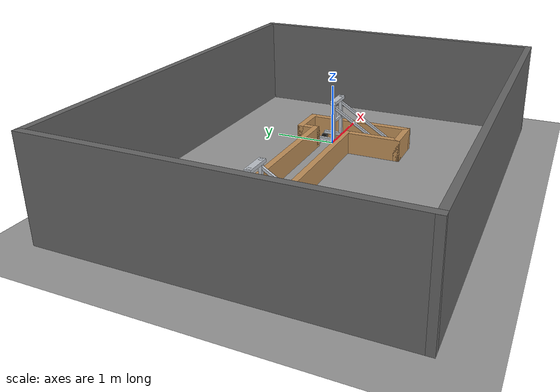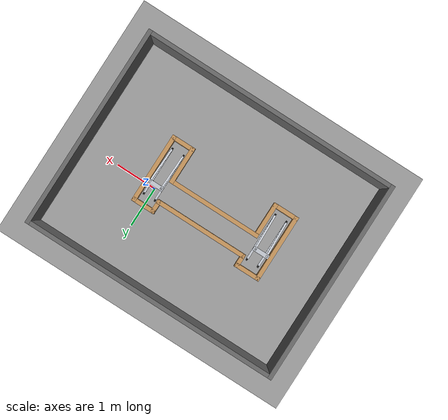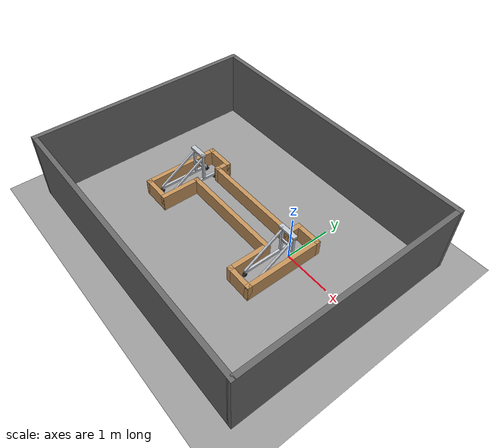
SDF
<?xml version="1.0" ?>
<sdf version="1.8">
  <world name="renee_room">
    <physics type='ode'>
      <max_step_size>0.02</max_step_size>
      <real_time_factor>1.0</real_time_factor>
      <real_time_update_rate>50</real_time_update_rate>
    </physics>
    <plugin name='gz::sim::systems::Physics' filename='libgz-sim-physics-system.so'/>
    <plugin name='gz::sim::systems::UserCommands' filename='libgz-sim-user-commands-system.so'/>
    <plugin name='gz::sim::systems::SceneBroadcaster' filename='libgz-sim-scene-broadcaster-system.so'/>
    <plugin name="gz::sim::systems::Sensors" filename="libgz-sim-sensors-system.so">
      <render_engine>ogre2</render_engine>
    </plugin>
    <plugin name="gz::sim::systems::Imu" filename="libgz-sim-imu-system.so"/>
    <plugin name="gz::sim::systems::NavSat" filename="libgz-sim-navsat-system.so"/>

    <light type="directional" name="sun">
      <cast_shadows>true</cast_shadows>
      <pose>0 0 10 0 0 0</pose>
      <diffuse>0.8 0.8 0.8 1</diffuse>
      <specular>0.2 0.2 0.2 1</specular>
      <direction>-0.5 0.1 -0.9</direction>
    </light>

    <model name="ground_plane">
      <static>true</static>
      <link name="link">
        <collision name="collision">
          <geometry><plane><normal>0 0 1</normal><size>20 20</size></plane></geometry>
        </collision>
        <visual name="visual">
          <geometry><plane><normal>0 0 1</normal><size>20 20</size></plane></geometry>
          <material>
            <ambient>0.6 0.6 0.6 1</ambient>
            <diffuse>0.6 0.6 0.6 1</diffuse>
          </material>
        </visual>
      </link>
    </model>

    <!-- Triangular wheeled stands under the Campetella beam. -->
    <model name="campetella_stands"><static>true</static><pose>0 0 0 0 0 0</pose>
      <link name="l">
        <collision name="stand_near_rail0_c"><pose>-2.9250 -0.3750 0.1250 0.0000 0 0</pose><geometry><box><size>0.0500 1.1500 0.0500</size></box></geometry></collision>
        <visual name="stand_near_rail0_v"><pose>-2.9250 -0.3750 0.1250 0.0000 0 0</pose><geometry><box><size>0.0500 1.1500 0.0500</size></box></geometry><material><ambient>0.75 0.77 0.80 1</ambient><diffuse>0.75 0.77 0.80 1</diffuse></material></visual>
        <collision name="stand_near_post0_c"><pose>-2.9250 -0.0865 0.4750 0.0000 0 0</pose><geometry><box><size>0.0500 0.0500 0.6500</size></box></geometry></collision>
        <visual name="stand_near_post0_v"><pose>-2.9250 -0.0865 0.4750 0.0000 0 0</pose><geometry><box><size>0.0500 0.0500 0.6500</size></box></geometry><material><ambient>0.75 0.77 0.80 1</ambient><diffuse>0.75 0.77 0.80 1</diffuse></material></visual>
        <collision name="stand_near_brace0_c"><pose>-2.9250 -0.5182 0.4250 0.5671 0 0</pose><geometry><box><size>0.0400 1.0238 0.0400</size></box></geometry></collision>
        <visual name="stand_near_brace0_v"><pose>-2.9250 -0.5182 0.4250 0.5671 0 0</pose><geometry><box><size>0.0400 1.0238 0.0400</size></box></geometry><material><ambient>0.75 0.77 0.80 1</ambient><diffuse>0.75 0.77 0.80 1</diffuse></material></visual>
        <collision name="stand_near_wheel00_c"><pose>-2.9250 0.2000 0.0500 0 1.5708 0</pose><geometry><cylinder><radius>0.05</radius><length>0.04</length></cylinder></geometry></collision>
        <visual name="stand_near_wheel00_v"><pose>-2.9250 0.2000 0.0500 0 1.5708 0</pose><geometry><cylinder><radius>0.05</radius><length>0.04</length></cylinder></geometry><material><ambient>0.1 0.1 0.1 1</ambient><diffuse>0.1 0.1 0.1 1</diffuse></material></visual>
        <collision name="stand_near_wheel01_c"><pose>-2.9250 -0.9500 0.0500 0 1.5708 0</pose><geometry><cylinder><radius>0.05</radius><length>0.04</length></cylinder></geometry></collision>
        <visual name="stand_near_wheel01_v"><pose>-2.9250 -0.9500 0.0500 0 1.5708 0</pose><geometry><cylinder><radius>0.05</radius><length>0.04</length></cylinder></geometry><material><ambient>0.1 0.1 0.1 1</ambient><diffuse>0.1 0.1 0.1 1</diffuse></material></visual>
        <collision name="stand_near_rail1_c"><pose>-2.6250 -0.3750 0.1250 0.0000 0 0</pose><geometry><box><size>0.0500 1.1500 0.0500</size></box></geometry></collision>
        <visual name="stand_near_rail1_v"><pose>-2.6250 -0.3750 0.1250 0.0000 0 0</pose><geometry><box><size>0.0500 1.1500 0.0500</size></box></geometry><material><ambient>0.75 0.77 0.80 1</ambient><diffuse>0.75 0.77 0.80 1</diffuse></material></visual>
        <collision name="stand_near_post1_c"><pose>-2.6250 -0.0865 0.4750 0.0000 0 0</pose><geometry><box><size>0.0500 0.0500 0.6500</size></box></geometry></collision>
        <visual name="stand_near_post1_v"><pose>-2.6250 -0.0865 0.4750 0.0000 0 0</pose><geometry><box><size>0.0500 0.0500 0.6500</size></box></geometry><material><ambient>0.75 0.77 0.80 1</ambient><diffuse>0.75 0.77 0.80 1</diffuse></material></visual>
        <collision name="stand_near_brace1_c"><pose>-2.6250 -0.5182 0.4250 0.5671 0 0</pose><geometry><box><size>0.0400 1.0238 0.0400</size></box></geometry></collision>
        <visual name="stand_near_brace1_v"><pose>-2.6250 -0.5182 0.4250 0.5671 0 0</pose><geometry><box><size>0.0400 1.0238 0.0400</size></box></geometry><material><ambient>0.75 0.77 0.80 1</ambient><diffuse>0.75 0.77 0.80 1</diffuse></material></visual>
        <collision name="stand_near_wheel10_c"><pose>-2.6250 0.2000 0.0500 0 1.5708 0</pose><geometry><cylinder><radius>0.05</radius><length>0.04</length></cylinder></geometry></collision>
        <visual name="stand_near_wheel10_v"><pose>-2.6250 0.2000 0.0500 0 1.5708 0</pose><geometry><cylinder><radius>0.05</radius><length>0.04</length></cylinder></geometry><material><ambient>0.1 0.1 0.1 1</ambient><diffuse>0.1 0.1 0.1 1</diffuse></material></visual>
        <collision name="stand_near_wheel11_c"><pose>-2.6250 -0.9500 0.0500 0 1.5708 0</pose><geometry><cylinder><radius>0.05</radius><length>0.04</length></cylinder></geometry></collision>
        <visual name="stand_near_wheel11_v"><pose>-2.6250 -0.9500 0.0500 0 1.5708 0</pose><geometry><cylinder><radius>0.05</radius><length>0.04</length></cylinder></geometry><material><ambient>0.1 0.1 0.1 1</ambient><diffuse>0.1 0.1 0.1 1</diffuse></material></visual>
        <collision name="stand_near_top_c"><pose>-2.7750 -0.0865 0.7750 0.0000 0 0</pose><geometry><box><size>0.4000 0.1000 0.0500</size></box></geometry></collision>
        <visual name="stand_near_top_v"><pose>-2.7750 -0.0865 0.7750 0.0000 0 0</pose><geometry><box><size>0.4000 0.1000 0.0500</size></box></geometry><material><ambient>0.75 0.77 0.80 1</ambient><diffuse>0.75 0.77 0.80 1</diffuse></material></visual>
        <collision name="stand_near_xbrace_c"><pose>-2.7750 -0.0865 0.4500 0.0000 0 0</pose><geometry><box><size>0.3000 0.0400 0.0400</size></box></geometry></collision>
        <visual name="stand_near_xbrace_v"><pose>-2.7750 -0.0865 0.4500 0.0000 0 0</pose><geometry><box><size>0.3000 0.0400 0.0400</size></box></geometry><material><ambient>0.75 0.77 0.80 1</ambient><diffuse>0.75 0.77 0.80 1</diffuse></material></visual>
        <collision name="stand_far_rail0_c"><pose>-0.1500 -0.3750 0.1250 0.0000 0 0</pose><geometry><box><size>0.0500 1.1500 0.0500</size></box></geometry></collision>
        <visual name="stand_far_rail0_v"><pose>-0.1500 -0.3750 0.1250 0.0000 0 0</pose><geometry><box><size>0.0500 1.1500 0.0500</size></box></geometry><material><ambient>0.75 0.77 0.80 1</ambient><diffuse>0.75 0.77 0.80 1</diffuse></material></visual>
        <collision name="stand_far_post0_c"><pose>-0.1500 -0.0865 0.4750 0.0000 0 0</pose><geometry><box><size>0.0500 0.0500 0.6500</size></box></geometry></collision>
        <visual name="stand_far_post0_v"><pose>-0.1500 -0.0865 0.4750 0.0000 0 0</pose><geometry><box><size>0.0500 0.0500 0.6500</size></box></geometry><material><ambient>0.75 0.77 0.80 1</ambient><diffuse>0.75 0.77 0.80 1</diffuse></material></visual>
        <collision name="stand_far_brace0_c"><pose>-0.1500 -0.5182 0.4250 0.5671 0 0</pose><geometry><box><size>0.0400 1.0238 0.0400</size></box></geometry></collision>
        <visual name="stand_far_brace0_v"><pose>-0.1500 -0.5182 0.4250 0.5671 0 0</pose><geometry><box><size>0.0400 1.0238 0.0400</size></box></geometry><material><ambient>0.75 0.77 0.80 1</ambient><diffuse>0.75 0.77 0.80 1</diffuse></material></visual>
        <collision name="stand_far_wheel00_c"><pose>-0.1500 0.2000 0.0500 0 1.5708 0</pose><geometry><cylinder><radius>0.05</radius><length>0.04</length></cylinder></geometry></collision>
        <visual name="stand_far_wheel00_v"><pose>-0.1500 0.2000 0.0500 0 1.5708 0</pose><geometry><cylinder><radius>0.05</radius><length>0.04</length></cylinder></geometry><material><ambient>0.1 0.1 0.1 1</ambient><diffuse>0.1 0.1 0.1 1</diffuse></material></visual>
        <collision name="stand_far_wheel01_c"><pose>-0.1500 -0.9500 0.0500 0 1.5708 0</pose><geometry><cylinder><radius>0.05</radius><length>0.04</length></cylinder></geometry></collision>
        <visual name="stand_far_wheel01_v"><pose>-0.1500 -0.9500 0.0500 0 1.5708 0</pose><geometry><cylinder><radius>0.05</radius><length>0.04</length></cylinder></geometry><material><ambient>0.1 0.1 0.1 1</ambient><diffuse>0.1 0.1 0.1 1</diffuse></material></visual>
        <collision name="stand_far_rail1_c"><pose>0.1500 -0.3750 0.1250 0.0000 0 0</pose><geometry><box><size>0.0500 1.1500 0.0500</size></box></geometry></collision>
        <visual name="stand_far_rail1_v"><pose>0.1500 -0.3750 0.1250 0.0000 0 0</pose><geometry><box><size>0.0500 1.1500 0.0500</size></box></geometry><material><ambient>0.75 0.77 0.80 1</ambient><diffuse>0.75 0.77 0.80 1</diffuse></material></visual>
        <collision name="stand_far_post1_c"><pose>0.1500 -0.0865 0.4750 0.0000 0 0</pose><geometry><box><size>0.0500 0.0500 0.6500</size></box></geometry></collision>
        <visual name="stand_far_post1_v"><pose>0.1500 -0.0865 0.4750 0.0000 0 0</pose><geometry><box><size>0.0500 0.0500 0.6500</size></box></geometry><material><ambient>0.75 0.77 0.80 1</ambient><diffuse>0.75 0.77 0.80 1</diffuse></material></visual>
        <collision name="stand_far_brace1_c"><pose>0.1500 -0.5182 0.4250 0.5671 0 0</pose><geometry><box><size>0.0400 1.0238 0.0400</size></box></geometry></collision>
        <visual name="stand_far_brace1_v"><pose>0.1500 -0.5182 0.4250 0.5671 0 0</pose><geometry><box><size>0.0400 1.0238 0.0400</size></box></geometry><material><ambient>0.75 0.77 0.80 1</ambient><diffuse>0.75 0.77 0.80 1</diffuse></material></visual>
        <collision name="stand_far_wheel10_c"><pose>0.1500 0.2000 0.0500 0 1.5708 0</pose><geometry><cylinder><radius>0.05</radius><length>0.04</length></cylinder></geometry></collision>
        <visual name="stand_far_wheel10_v"><pose>0.1500 0.2000 0.0500 0 1.5708 0</pose><geometry><cylinder><radius>0.05</radius><length>0.04</length></cylinder></geometry><material><ambient>0.1 0.1 0.1 1</ambient><diffuse>0.1 0.1 0.1 1</diffuse></material></visual>
        <collision name="stand_far_wheel11_c"><pose>0.1500 -0.9500 0.0500 0 1.5708 0</pose><geometry><cylinder><radius>0.05</radius><length>0.04</length></cylinder></geometry></collision>
        <visual name="stand_far_wheel11_v"><pose>0.1500 -0.9500 0.0500 0 1.5708 0</pose><geometry><cylinder><radius>0.05</radius><length>0.04</length></cylinder></geometry><material><ambient>0.1 0.1 0.1 1</ambient><diffuse>0.1 0.1 0.1 1</diffuse></material></visual>
        <collision name="stand_far_top_c"><pose>0.0000 -0.0865 0.7750 0.0000 0 0</pose><geometry><box><size>0.4000 0.1000 0.0500</size></box></geometry></collision>
        <visual name="stand_far_top_v"><pose>0.0000 -0.0865 0.7750 0.0000 0 0</pose><geometry><box><size>0.4000 0.1000 0.0500</size></box></geometry><material><ambient>0.75 0.77 0.80 1</ambient><diffuse>0.75 0.77 0.80 1</diffuse></material></visual>
        <collision name="stand_far_xbrace_c"><pose>0.0000 -0.0865 0.4500 0.0000 0 0</pose><geometry><box><size>0.3000 0.0400 0.0400</size></box></geometry></collision>
        <visual name="stand_far_xbrace_v"><pose>0.0000 -0.0865 0.4500 0.0000 0 0</pose><geometry><box><size>0.3000 0.0400 0.0400</size></box></geometry><material><ambient>0.75 0.77 0.80 1</ambient><diffuse>0.75 0.77 0.80 1</diffuse></material></visual>
      </link>
    </model>

    <!-- Wooden pallet fences (asymmetric H). gpu_lidar needs the visuals. -->
    <model name="campetella_fences"><static>true</static><pose>0 0 0 0 0 0</pose>
      <link name="l">
        <collision name="fence00_c"><pose>-3.0500 -0.3500 0.1750 0.0000 0 0</pose><geometry><box><size>0.1000 1.7000 0.3500</size></box></geometry></collision>
        <visual name="fence00_v"><pose>-3.0500 -0.3500 0.1750 0.0000 0 0</pose><geometry><box><size>0.1000 1.7000 0.3500</size></box></geometry><material><ambient>0.76 0.57 0.35 1</ambient><diffuse>0.76 0.57 0.35 1</diffuse></material></visual>
        <collision name="fence01_c"><pose>-2.7750 0.4500 0.1750 0.0000 0 0</pose><geometry><box><size>0.6500 0.1000 0.3500</size></box></geometry></collision>
        <visual name="fence01_v"><pose>-2.7750 0.4500 0.1750 0.0000 0 0</pose><geometry><box><size>0.6500 0.1000 0.3500</size></box></geometry><material><ambient>0.76 0.57 0.35 1</ambient><diffuse>0.76 0.57 0.35 1</diffuse></material></visual>
        <collision name="fence02_c"><pose>-2.5000 0.3250 0.1750 0.0000 0 0</pose><geometry><box><size>0.1000 0.3500 0.3500</size></box></geometry></collision>
        <visual name="fence02_v"><pose>-2.5000 0.3250 0.1750 0.0000 0 0</pose><geometry><box><size>0.1000 0.3500 0.3500</size></box></geometry><material><ambient>0.76 0.57 0.35 1</ambient><diffuse>0.76 0.57 0.35 1</diffuse></material></visual>
        <collision name="fence03_c"><pose>-1.3750 0.2000 0.1750 0.0000 0 0</pose><geometry><box><size>2.3500 0.1000 0.3500</size></box></geometry></collision>
        <visual name="fence03_v"><pose>-1.3750 0.2000 0.1750 0.0000 0 0</pose><geometry><box><size>2.3500 0.1000 0.3500</size></box></geometry><material><ambient>0.76 0.57 0.35 1</ambient><diffuse>0.76 0.57 0.35 1</diffuse></material></visual>
        <collision name="fence04_c"><pose>-0.2500 0.3250 0.1750 0.0000 0 0</pose><geometry><box><size>0.1000 0.3500 0.3500</size></box></geometry></collision>
        <visual name="fence04_v"><pose>-0.2500 0.3250 0.1750 0.0000 0 0</pose><geometry><box><size>0.1000 0.3500 0.3500</size></box></geometry><material><ambient>0.76 0.57 0.35 1</ambient><diffuse>0.76 0.57 0.35 1</diffuse></material></visual>
        <collision name="fence05_c"><pose>0.0000 0.4500 0.1750 0.0000 0 0</pose><geometry><box><size>0.6000 0.1000 0.3500</size></box></geometry></collision>
        <visual name="fence05_v"><pose>0.0000 0.4500 0.1750 0.0000 0 0</pose><geometry><box><size>0.6000 0.1000 0.3500</size></box></geometry><material><ambient>0.76 0.57 0.35 1</ambient><diffuse>0.76 0.57 0.35 1</diffuse></material></visual>
        <collision name="fence06_c"><pose>0.2500 -0.3750 0.1750 0.0000 0 0</pose><geometry><box><size>0.1000 1.7500 0.3500</size></box></geometry></collision>
        <visual name="fence06_v"><pose>0.2500 -0.3750 0.1750 0.0000 0 0</pose><geometry><box><size>0.1000 1.7500 0.3500</size></box></geometry><material><ambient>0.76 0.57 0.35 1</ambient><diffuse>0.76 0.57 0.35 1</diffuse></material></visual>
        <collision name="fence07_c"><pose>0.0000 -1.2000 0.1750 0.0000 0 0</pose><geometry><box><size>0.6000 0.1000 0.3500</size></box></geometry></collision>
        <visual name="fence07_v"><pose>0.0000 -1.2000 0.1750 0.0000 0 0</pose><geometry><box><size>0.6000 0.1000 0.3500</size></box></geometry><material><ambient>0.76 0.57 0.35 1</ambient><diffuse>0.76 0.57 0.35 1</diffuse></material></visual>
        <collision name="fence08_c"><pose>-0.2500 -0.7750 0.1750 0.0000 0 0</pose><geometry><box><size>0.1000 0.9500 0.3500</size></box></geometry></collision>
        <visual name="fence08_v"><pose>-0.2500 -0.7750 0.1750 0.0000 0 0</pose><geometry><box><size>0.1000 0.9500 0.3500</size></box></geometry><material><ambient>0.76 0.57 0.35 1</ambient><diffuse>0.76 0.57 0.35 1</diffuse></material></visual>
        <collision name="fence09_c"><pose>-1.3750 -0.3500 0.1750 0.0000 0 0</pose><geometry><box><size>2.3500 0.1000 0.3500</size></box></geometry></collision>
        <visual name="fence09_v"><pose>-1.3750 -0.3500 0.1750 0.0000 0 0</pose><geometry><box><size>2.3500 0.1000 0.3500</size></box></geometry><material><ambient>0.76 0.57 0.35 1</ambient><diffuse>0.76 0.57 0.35 1</diffuse></material></visual>
        <collision name="fence10_c"><pose>-2.5000 -0.7500 0.1750 0.0000 0 0</pose><geometry><box><size>0.1000 0.9000 0.3500</size></box></geometry></collision>
        <visual name="fence10_v"><pose>-2.5000 -0.7500 0.1750 0.0000 0 0</pose><geometry><box><size>0.1000 0.9000 0.3500</size></box></geometry><material><ambient>0.76 0.57 0.35 1</ambient><diffuse>0.76 0.57 0.35 1</diffuse></material></visual>
        <collision name="fence11_c"><pose>-2.7750 -1.1500 0.1750 0.0000 0 0</pose><geometry><box><size>0.6500 0.1000 0.3500</size></box></geometry></collision>
        <visual name="fence11_v"><pose>-2.7750 -1.1500 0.1750 0.0000 0 0</pose><geometry><box><size>0.6500 0.1000 0.3500</size></box></geometry><material><ambient>0.76 0.57 0.35 1</ambient><diffuse>0.76 0.57 0.35 1</diffuse></material></visual>
      </link>
    </model>

    <!-- Walls: pose is the wall centre (inner face +-0.05 m). -->
    <model name="wall_front"><static>true</static><pose>1.8500 -0.3750 0.75 0 0 1.5708</pose>
      <link name="l">
        <collision name="c"><geometry><box><size>4.950 0.1 1.5</size></box></geometry></collision>
        <visual name="v"><geometry><box><size>4.950 0.1 1.5</size></box></geometry>
          <material><ambient>0.4 0.4 0.4 1</ambient><diffuse>0.4 0.4 0.4 1</diffuse></material>
        </visual>
      </link>
    </model>
    <model name="wall_back"><static>true</static><pose>-4.3500 -0.3750 0.75 0 0 1.5708</pose>
      <link name="l">
        <collision name="c"><geometry><box><size>4.950 0.1 1.5</size></box></geometry></collision>
        <visual name="v"><geometry><box><size>4.950 0.1 1.5</size></box></geometry>
          <material><ambient>0.4 0.4 0.4 1</ambient><diffuse>0.4 0.4 0.4 1</diffuse></material>
        </visual>
      </link>
    </model>
    <model name="wall_left"><static>true</static><pose>-1.2500 2.0500 0.75 0 0 0</pose>
      <link name="l">
        <collision name="c"><geometry><box><size>6.300 0.1 1.5</size></box></geometry></collision>
        <visual name="v"><geometry><box><size>6.300 0.1 1.5</size></box></geometry>
          <material><ambient>0.4 0.4 0.4 1</ambient><diffuse>0.4 0.4 0.4 1</diffuse></material>
        </visual>
      </link>
    </model>
    <model name="wall_right"><static>true</static><pose>-1.2500 -2.8000 0.75 0 0 0</pose>
      <link name="l">
        <collision name="c"><geometry><box><size>6.300 0.1 1.5</size></box></geometry></collision>
        <visual name="v"><geometry><box><size>6.300 0.1 1.5</size></box></geometry>
          <material><ambient>0.4 0.4 0.4 1</ambient><diffuse>0.4 0.4 0.4 1</diffuse></material>
        </visual>
      </link>
    </model>
  </world>
</sdf>
